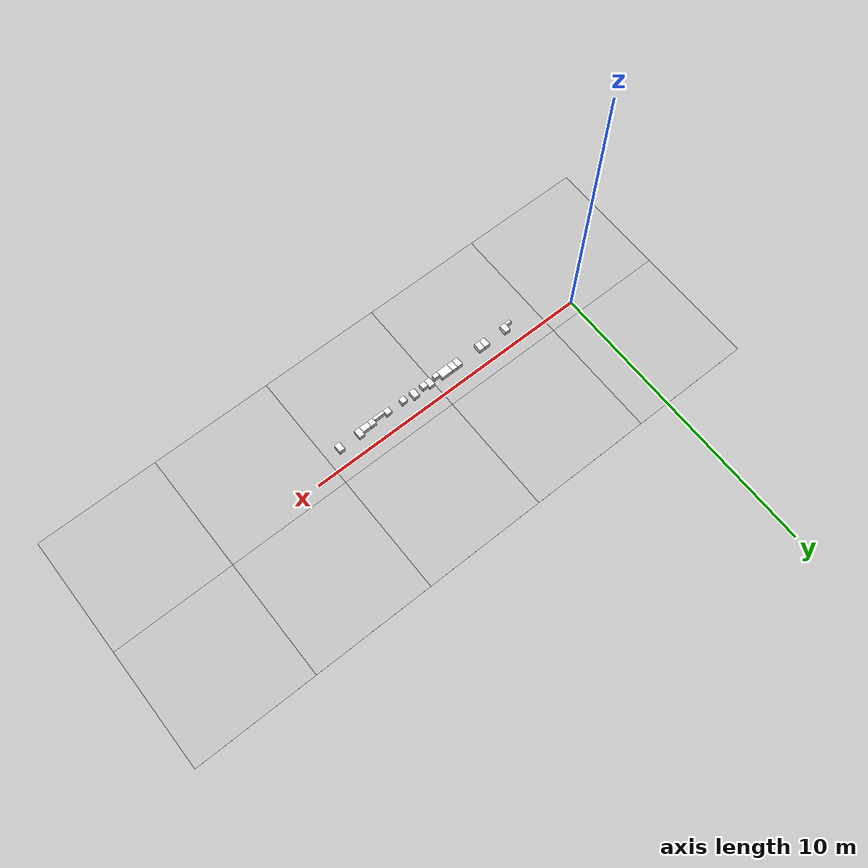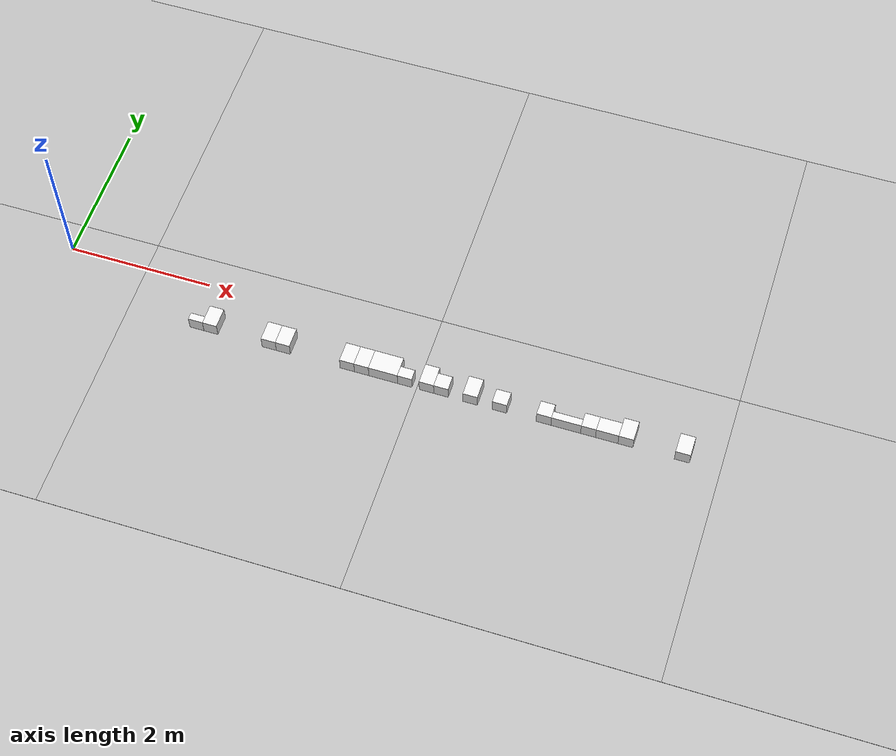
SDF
<sdf version='1.6'><world name='default'>
    <light name='sun_light' type='directional'>
      <pose frame=''>0 0 10 0 -0 0</pose>
      <diffuse>0.5 0.5 0.5 1</diffuse>
      <specular>0.1 0.1 0.1 1</specular>
      <direction>0.1 0.1 -0.9</direction>
      <attenuation>
        <range>20</range>
        <constant>0.5</constant>
        <linear>0.01</linear>
        <quadratic>0.001</quadratic>
      </attenuation>
      <cast_shadows>1</cast_shadows>
    </light>

    <model name='Tile/0-0'>
      <static>1</static>
      <link name='link'>
        <collision name='collision'>
          <geometry>
            <plane>
              <normal>0 0 1</normal>
              <size>4.096 4.096</size>
            </plane>
          </geometry>
          <surface>
            <friction>
              <ode>
                <mu>100</mu>
                <mu2>50</mu2>
              </ode>
              <torsional>
                <ode/>
              </torsional>
            </friction>
            <contact>
              <ode/>
            </contact>
            <bounce/>
          </surface>
          <max_contacts>10</max_contacts>
        </collision>
        <visual name='visual'>
          <cast_shadows>0</cast_shadows>
          <geometry>
            <plane>
              <normal>0 0 1</normal>
              <size>4.096 4.096</size>
            </plane>
          </geometry>
          <material>
            <script>
              <uri>file://materials/scripts</uri>
              <uri>file://materials/textures</uri>
              <name>Tile/aa44efc093d15b0d016b671cb8dad8b9b5925cd42bc6b331ef31decf4ba6863e</name>
            </script>
          </material>
        </visual>
        <self_collide>0</self_collide>
        <enable_wind>0</enable_wind>
        <kinematic>0</kinematic>
      </link>
      <pose frame=''>-0.952 -1.6520000000000001 0 0 -0 0</pose>
    </model>

    <model name='Tile/0-1'>
      <static>1</static>
      <link name='link'>
        <collision name='collision'>
          <geometry>
            <plane>
              <normal>0 0 1</normal>
              <size>4.096 4.096</size>
            </plane>
          </geometry>
          <surface>
            <friction>
              <ode>
                <mu>100</mu>
                <mu2>50</mu2>
              </ode>
              <torsional>
                <ode/>
              </torsional>
            </friction>
            <contact>
              <ode/>
            </contact>
            <bounce/>
          </surface>
          <max_contacts>10</max_contacts>
        </collision>
        <visual name='visual'>
          <cast_shadows>0</cast_shadows>
          <geometry>
            <plane>
              <normal>0 0 1</normal>
              <size>4.096 4.096</size>
            </plane>
          </geometry>
          <material>
            <script>
              <uri>file://materials/scripts</uri>
              <uri>file://materials/textures</uri>
              <name>Tile/6681b896b1587d54cb69aadeb5fb7247b4d6d500490292053e67105ac88ca889</name>
            </script>
          </material>
        </visual>
        <self_collide>0</self_collide>
        <enable_wind>0</enable_wind>
        <kinematic>0</kinematic>
      </link>
      <pose frame=''>-0.952 2.444 0 0 -0 0</pose>
    </model>

    <model name='Tile/1-0'>
      <static>1</static>
      <link name='link'>
        <collision name='collision'>
          <geometry>
            <plane>
              <normal>0 0 1</normal>
              <size>4.096 4.096</size>
            </plane>
          </geometry>
          <surface>
            <friction>
              <ode>
                <mu>100</mu>
                <mu2>50</mu2>
              </ode>
              <torsional>
                <ode/>
              </torsional>
            </friction>
            <contact>
              <ode/>
            </contact>
            <bounce/>
          </surface>
          <max_contacts>10</max_contacts>
        </collision>
        <visual name='visual'>
          <cast_shadows>0</cast_shadows>
          <geometry>
            <plane>
              <normal>0 0 1</normal>
              <size>4.096 4.096</size>
            </plane>
          </geometry>
          <material>
            <script>
              <uri>file://materials/scripts</uri>
              <uri>file://materials/textures</uri>
              <name>Tile/596ebdf04be01501635488e7e7f1c977e3ef667d4e428c8e61d845d4f47d8e7c</name>
            </script>
          </material>
        </visual>
        <self_collide>0</self_collide>
        <enable_wind>0</enable_wind>
        <kinematic>0</kinematic>
      </link>
      <pose frame=''>3.144 -1.6520000000000001 0 0 -0 0</pose>
    </model>

    <model name='Tile/1-1'>
      <static>1</static>
      <link name='link'>
        <collision name='collision'>
          <geometry>
            <plane>
              <normal>0 0 1</normal>
              <size>4.096 4.096</size>
            </plane>
          </geometry>
          <surface>
            <friction>
              <ode>
                <mu>100</mu>
                <mu2>50</mu2>
              </ode>
              <torsional>
                <ode/>
              </torsional>
            </friction>
            <contact>
              <ode/>
            </contact>
            <bounce/>
          </surface>
          <max_contacts>10</max_contacts>
        </collision>
        <visual name='visual'>
          <cast_shadows>0</cast_shadows>
          <geometry>
            <plane>
              <normal>0 0 1</normal>
              <size>4.096 4.096</size>
            </plane>
          </geometry>
          <material>
            <script>
              <uri>file://materials/scripts</uri>
              <uri>file://materials/textures</uri>
              <name>Tile/13957a6de1f2afce18d7f1f64dacc2f21295e26ccf498256b0e1a51002cd5706</name>
            </script>
          </material>
        </visual>
        <self_collide>0</self_collide>
        <enable_wind>0</enable_wind>
        <kinematic>0</kinematic>
      </link>
      <pose frame=''>3.144 2.444 0 0 -0 0</pose>
    </model>

    <model name='Tile/2-0'>
      <static>1</static>
      <link name='link'>
        <collision name='collision'>
          <geometry>
            <plane>
              <normal>0 0 1</normal>
              <size>4.096 4.096</size>
            </plane>
          </geometry>
          <surface>
            <friction>
              <ode>
                <mu>100</mu>
                <mu2>50</mu2>
              </ode>
              <torsional>
                <ode/>
              </torsional>
            </friction>
            <contact>
              <ode/>
            </contact>
            <bounce/>
          </surface>
          <max_contacts>10</max_contacts>
        </collision>
        <visual name='visual'>
          <cast_shadows>0</cast_shadows>
          <geometry>
            <plane>
              <normal>0 0 1</normal>
              <size>4.096 4.096</size>
            </plane>
          </geometry>
          <material>
            <script>
              <uri>file://materials/scripts</uri>
              <uri>file://materials/textures</uri>
              <name>Tile/cbddc153e49222d1d6595acd2b9f5109fae374e89477a6c6ad6e3800ec78341f</name>
            </script>
          </material>
        </visual>
        <self_collide>0</self_collide>
        <enable_wind>0</enable_wind>
        <kinematic>0</kinematic>
      </link>
      <pose frame=''>7.24 -1.6520000000000001 0 0 -0 0</pose>
    </model>

    <model name='Tile/2-1'>
      <static>1</static>
      <link name='link'>
        <collision name='collision'>
          <geometry>
            <plane>
              <normal>0 0 1</normal>
              <size>4.096 4.096</size>
            </plane>
          </geometry>
          <surface>
            <friction>
              <ode>
                <mu>100</mu>
                <mu2>50</mu2>
              </ode>
              <torsional>
                <ode/>
              </torsional>
            </friction>
            <contact>
              <ode/>
            </contact>
            <bounce/>
          </surface>
          <max_contacts>10</max_contacts>
        </collision>
        <visual name='visual'>
          <cast_shadows>0</cast_shadows>
          <geometry>
            <plane>
              <normal>0 0 1</normal>
              <size>4.096 4.096</size>
            </plane>
          </geometry>
          <material>
            <script>
              <uri>file://materials/scripts</uri>
              <uri>file://materials/textures</uri>
              <name>Tile/13957a6de1f2afce18d7f1f64dacc2f21295e26ccf498256b0e1a51002cd5706</name>
            </script>
          </material>
        </visual>
        <self_collide>0</self_collide>
        <enable_wind>0</enable_wind>
        <kinematic>0</kinematic>
      </link>
      <pose frame=''>7.24 2.444 0 0 -0 0</pose>
    </model>

    <model name='Tile/3-0'>
      <static>1</static>
      <link name='link'>
        <collision name='collision'>
          <geometry>
            <plane>
              <normal>0 0 1</normal>
              <size>4.096 4.096</size>
            </plane>
          </geometry>
          <surface>
            <friction>
              <ode>
                <mu>100</mu>
                <mu2>50</mu2>
              </ode>
              <torsional>
                <ode/>
              </torsional>
            </friction>
            <contact>
              <ode/>
            </contact>
            <bounce/>
          </surface>
          <max_contacts>10</max_contacts>
        </collision>
        <visual name='visual'>
          <cast_shadows>0</cast_shadows>
          <geometry>
            <plane>
              <normal>0 0 1</normal>
              <size>4.096 4.096</size>
            </plane>
          </geometry>
          <material>
            <script>
              <uri>file://materials/scripts</uri>
              <uri>file://materials/textures</uri>
              <name>Tile/a2e70b271843357a6fa1ef4108b4103409bc7753da6082ab6a0850a53cefc47d</name>
            </script>
          </material>
        </visual>
        <self_collide>0</self_collide>
        <enable_wind>0</enable_wind>
        <kinematic>0</kinematic>
      </link>
      <pose frame=''>11.336 -1.6520000000000001 0 0 -0 0</pose>
    </model>

    <model name='Tile/3-1'>
      <static>1</static>
      <link name='link'>
        <collision name='collision'>
          <geometry>
            <plane>
              <normal>0 0 1</normal>
              <size>4.096 4.096</size>
            </plane>
          </geometry>
          <surface>
            <friction>
              <ode>
                <mu>100</mu>
                <mu2>50</mu2>
              </ode>
              <torsional>
                <ode/>
              </torsional>
            </friction>
            <contact>
              <ode/>
            </contact>
            <bounce/>
          </surface>
          <max_contacts>10</max_contacts>
        </collision>
        <visual name='visual'>
          <cast_shadows>0</cast_shadows>
          <geometry>
            <plane>
              <normal>0 0 1</normal>
              <size>4.096 4.096</size>
            </plane>
          </geometry>
          <material>
            <script>
              <uri>file://materials/scripts</uri>
              <uri>file://materials/textures</uri>
              <name>Tile/af1fe16cf0d20f022b256245d0811b9212ac0cbb5bd7f66d373aeff8a96717bb</name>
            </script>
          </material>
        </visual>
        <self_collide>0</self_collide>
        <enable_wind>0</enable_wind>
        <kinematic>0</kinematic>
      </link>
      <pose frame=''>11.336 2.444 0 0 -0 0</pose>
    </model>

    <model name='Tile/4-0'>
      <static>1</static>
      <link name='link'>
        <collision name='collision'>
          <geometry>
            <plane>
              <normal>0 0 1</normal>
              <size>4.096 4.096</size>
            </plane>
          </geometry>
          <surface>
            <friction>
              <ode>
                <mu>100</mu>
                <mu2>50</mu2>
              </ode>
              <torsional>
                <ode/>
              </torsional>
            </friction>
            <contact>
              <ode/>
            </contact>
            <bounce/>
          </surface>
          <max_contacts>10</max_contacts>
        </collision>
        <visual name='visual'>
          <cast_shadows>0</cast_shadows>
          <geometry>
            <plane>
              <normal>0 0 1</normal>
              <size>4.096 4.096</size>
            </plane>
          </geometry>
          <material>
            <script>
              <uri>file://materials/scripts</uri>
              <uri>file://materials/textures</uri>
              <name>Tile/5eab350b8220ac9944dbdfa4ac3288c7c17e24c3bf5df0dfcf6173d64dae00a1</name>
            </script>
          </material>
        </visual>
        <self_collide>0</self_collide>
        <enable_wind>0</enable_wind>
        <kinematic>0</kinematic>
      </link>
      <pose frame=''>15.431999999999999 -1.6520000000000001 0 0 -0 0</pose>
    </model>

    <model name='Tile/4-1'>
      <static>1</static>
      <link name='link'>
        <collision name='collision'>
          <geometry>
            <plane>
              <normal>0 0 1</normal>
              <size>4.096 4.096</size>
            </plane>
          </geometry>
          <surface>
            <friction>
              <ode>
                <mu>100</mu>
                <mu2>50</mu2>
              </ode>
              <torsional>
                <ode/>
              </torsional>
            </friction>
            <contact>
              <ode/>
            </contact>
            <bounce/>
          </surface>
          <max_contacts>10</max_contacts>
        </collision>
        <visual name='visual'>
          <cast_shadows>0</cast_shadows>
          <geometry>
            <plane>
              <normal>0 0 1</normal>
              <size>4.096 4.096</size>
            </plane>
          </geometry>
          <material>
            <script>
              <uri>file://materials/scripts</uri>
              <uri>file://materials/textures</uri>
              <name>Tile/5eab350b8220ac9944dbdfa4ac3288c7c17e24c3bf5df0dfcf6173d64dae00a1</name>
            </script>
          </material>
        </visual>
        <self_collide>0</self_collide>
        <enable_wind>0</enable_wind>
        <kinematic>0</kinematic>
      </link>
      <pose frame=''>15.431999999999999 2.444 0 0 -0 0</pose>
    </model>

    <model name='Obstacle/-5/0'>
      <pose frame=''>2.1 -0.6499999999999999 0.1 0 0 -0.0</pose>
      <link name='link'>
        <inertial>
          <mass>10</mass>
          <inertia>
            <ixx>0.166667</ixx>
            <ixy>0</ixy>
            <ixz>0</ixz>
            <iyy>0.166667</iyy>
            <iyz>0</iyz>
            <izz>0.166667</izz>
          </inertia>
        </inertial>
        <collision name='collision'>
          <geometry>
            <box>
              <size>0.2 0.1 0.2</size>
            </box>
          </geometry>
          <max_contacts>10</max_contacts>
          <surface>
            <contact>
              <ode/>
            </contact>
            <bounce/>
            <friction>
              <torsional>
                <ode/>
              </torsional>
              <ode/>
            </friction>
          </surface>
        </collision>
        <visual name='visual'>
          <geometry>
            <box>
              <size>0.2 0.1 0.2</size>
            </box>
          </geometry>
          <material>
            <script>
              <name>Gazebo/White</name>
              <uri>file://media/materials/scripts/gazebo.material</uri>
            </script>
          </material>
        </visual>
        <self_collide>0</self_collide>
        <enable_wind>0</enable_wind>
        <kinematic>0</kinematic>
      </link>
    </model>

    <model name='Obstacle/-9/0'>
      <pose frame=''>2.3000000000000003 -0.5599999999999999 0.1 0 0 -0.0</pose>
      <link name='link'>
        <inertial>
          <mass>10</mass>
          <inertia>
            <ixx>0.166667</ixx>
            <ixy>0</ixy>
            <ixz>0</ixz>
            <iyy>0.166667</iyy>
            <iyz>0</iyz>
            <izz>0.166667</izz>
          </inertia>
        </inertial>
        <collision name='collision'>
          <geometry>
            <box>
              <size>0.2 0.28 0.2</size>
            </box>
          </geometry>
          <max_contacts>10</max_contacts>
          <surface>
            <contact>
              <ode/>
            </contact>
            <bounce/>
            <friction>
              <torsional>
                <ode/>
              </torsional>
              <ode/>
            </friction>
          </surface>
        </collision>
        <visual name='visual'>
          <geometry>
            <box>
              <size>0.2 0.28 0.2</size>
            </box>
          </geometry>
          <material>
            <script>
              <name>Gazebo/White</name>
              <uri>file://media/materials/scripts/gazebo.material</uri>
            </script>
          </material>
        </visual>
        <self_collide>0</self_collide>
        <enable_wind>0</enable_wind>
        <kinematic>0</kinematic>
      </link>
    </model>

    <model name='Obstacle/-16/0'>
      <pose frame=''>3.1300000000000003 -0.5599999999999999 0.1 0 0 -0.0</pose>
      <link name='link'>
        <inertial>
          <mass>10</mass>
          <inertia>
            <ixx>0.166667</ixx>
            <ixy>0</ixy>
            <ixz>0</ixz>
            <iyy>0.166667</iyy>
            <iyz>0</iyz>
            <izz>0.166667</izz>
          </inertia>
        </inertial>
        <collision name='collision'>
          <geometry>
            <box>
              <size>0.2 0.28 0.2</size>
            </box>
          </geometry>
          <max_contacts>10</max_contacts>
          <surface>
            <contact>
              <ode/>
            </contact>
            <bounce/>
            <friction>
              <torsional>
                <ode/>
              </torsional>
              <ode/>
            </friction>
          </surface>
        </collision>
        <visual name='visual'>
          <geometry>
            <box>
              <size>0.2 0.28 0.2</size>
            </box>
          </geometry>
          <material>
            <script>
              <name>Gazebo/White</name>
              <uri>file://media/materials/scripts/gazebo.material</uri>
            </script>
          </material>
        </visual>
        <self_collide>0</self_collide>
        <enable_wind>0</enable_wind>
        <kinematic>0</kinematic>
      </link>
    </model>

    <model name='Obstacle/-20/0'>
      <pose frame=''>3.3300000000000005 -0.5599999999999999 0.1 0 0 -0.0</pose>
      <link name='link'>
        <inertial>
          <mass>10</mass>
          <inertia>
            <ixx>0.166667</ixx>
            <ixy>0</ixy>
            <ixz>0</ixz>
            <iyy>0.166667</iyy>
            <iyz>0</iyz>
            <izz>0.166667</izz>
          </inertia>
        </inertial>
        <collision name='collision'>
          <geometry>
            <box>
              <size>0.2 0.28 0.2</size>
            </box>
          </geometry>
          <max_contacts>10</max_contacts>
          <surface>
            <contact>
              <ode/>
            </contact>
            <bounce/>
            <friction>
              <torsional>
                <ode/>
              </torsional>
              <ode/>
            </friction>
          </surface>
        </collision>
        <visual name='visual'>
          <geometry>
            <box>
              <size>0.2 0.28 0.2</size>
            </box>
          </geometry>
          <material>
            <script>
              <name>Gazebo/White</name>
              <uri>file://media/materials/scripts/gazebo.material</uri>
            </script>
          </material>
        </visual>
        <self_collide>0</self_collide>
        <enable_wind>0</enable_wind>
        <kinematic>0</kinematic>
      </link>
    </model>

    <model name='Obstacle/-27/0'>
      <pose frame=''>4.23 -0.5599999999999999 0.1 0 0 -0.0</pose>
      <link name='link'>
        <inertial>
          <mass>10</mass>
          <inertia>
            <ixx>0.166667</ixx>
            <ixy>0</ixy>
            <ixz>0</ixz>
            <iyy>0.166667</iyy>
            <iyz>0</iyz>
            <izz>0.166667</izz>
          </inertia>
        </inertial>
        <collision name='collision'>
          <geometry>
            <box>
              <size>0.2 0.28 0.2</size>
            </box>
          </geometry>
          <max_contacts>10</max_contacts>
          <surface>
            <contact>
              <ode/>
            </contact>
            <bounce/>
            <friction>
              <torsional>
                <ode/>
              </torsional>
              <ode/>
            </friction>
          </surface>
        </collision>
        <visual name='visual'>
          <geometry>
            <box>
              <size>0.2 0.28 0.2</size>
            </box>
          </geometry>
          <material>
            <script>
              <name>Gazebo/White</name>
              <uri>file://media/materials/scripts/gazebo.material</uri>
            </script>
          </material>
        </visual>
        <self_collide>0</self_collide>
        <enable_wind>0</enable_wind>
        <kinematic>0</kinematic>
      </link>
    </model>

    <model name='Obstacle/-31/0'>
      <pose frame=''>4.430000000000001 -0.5599999999999999 0.1 0 0 -0.0</pose>
      <link name='link'>
        <inertial>
          <mass>10</mass>
          <inertia>
            <ixx>0.166667</ixx>
            <ixy>0</ixy>
            <ixz>0</ixz>
            <iyy>0.166667</iyy>
            <iyz>0</iyz>
            <izz>0.166667</izz>
          </inertia>
        </inertial>
        <collision name='collision'>
          <geometry>
            <box>
              <size>0.2 0.28 0.2</size>
            </box>
          </geometry>
          <max_contacts>10</max_contacts>
          <surface>
            <contact>
              <ode/>
            </contact>
            <bounce/>
            <friction>
              <torsional>
                <ode/>
              </torsional>
              <ode/>
            </friction>
          </surface>
        </collision>
        <visual name='visual'>
          <geometry>
            <box>
              <size>0.2 0.28 0.2</size>
            </box>
          </geometry>
          <material>
            <script>
              <name>Gazebo/White</name>
              <uri>file://media/materials/scripts/gazebo.material</uri>
            </script>
          </material>
        </visual>
        <self_collide>0</self_collide>
        <enable_wind>0</enable_wind>
        <kinematic>0</kinematic>
      </link>
    </model>

    <model name='Obstacle/-35/0'>
      <pose frame=''>4.730000000000001 -0.5599999999999999 0.1 0 0 -0.0</pose>
      <link name='link'>
        <inertial>
          <mass>10</mass>
          <inertia>
            <ixx>0.166667</ixx>
            <ixy>0</ixy>
            <ixz>0</ixz>
            <iyy>0.166667</iyy>
            <iyz>0</iyz>
            <izz>0.166667</izz>
          </inertia>
        </inertial>
        <collision name='collision'>
          <geometry>
            <box>
              <size>0.4 0.28 0.2</size>
            </box>
          </geometry>
          <max_contacts>10</max_contacts>
          <surface>
            <contact>
              <ode/>
            </contact>
            <bounce/>
            <friction>
              <torsional>
                <ode/>
              </torsional>
              <ode/>
            </friction>
          </surface>
        </collision>
        <visual name='visual'>
          <geometry>
            <box>
              <size>0.4 0.28 0.2</size>
            </box>
          </geometry>
          <material>
            <script>
              <name>Gazebo/White</name>
              <uri>file://media/materials/scripts/gazebo.material</uri>
            </script>
          </material>
        </visual>
        <self_collide>0</self_collide>
        <enable_wind>0</enable_wind>
        <kinematic>0</kinematic>
      </link>
    </model>

    <model name='Obstacle/-39/0'>
      <pose frame=''>5.030000000000001 -0.625 0.1 0 0 -0.0</pose>
      <link name='link'>
        <inertial>
          <mass>10</mass>
          <inertia>
            <ixx>0.166667</ixx>
            <ixy>0</ixy>
            <ixz>0</ixz>
            <iyy>0.166667</iyy>
            <iyz>0</iyz>
            <izz>0.166667</izz>
          </inertia>
        </inertial>
        <collision name='collision'>
          <geometry>
            <box>
              <size>0.2 0.15 0.2</size>
            </box>
          </geometry>
          <max_contacts>10</max_contacts>
          <surface>
            <contact>
              <ode/>
            </contact>
            <bounce/>
            <friction>
              <torsional>
                <ode/>
              </torsional>
              <ode/>
            </friction>
          </surface>
        </collision>
        <visual name='visual'>
          <geometry>
            <box>
              <size>0.2 0.15 0.2</size>
            </box>
          </geometry>
          <material>
            <script>
              <name>Gazebo/White</name>
              <uri>file://media/materials/scripts/gazebo.material</uri>
            </script>
          </material>
        </visual>
        <self_collide>0</self_collide>
        <enable_wind>0</enable_wind>
        <kinematic>0</kinematic>
      </link>
    </model>

    <model name='Obstacle/-46/0'>
      <pose frame=''>5.330000000000001 -0.5599999999999999 0.1 0 0 -0.0</pose>
      <link name='link'>
        <inertial>
          <mass>10</mass>
          <inertia>
            <ixx>0.166667</ixx>
            <ixy>0</ixy>
            <ixz>0</ixz>
            <iyy>0.166667</iyy>
            <iyz>0</iyz>
            <izz>0.166667</izz>
          </inertia>
        </inertial>
        <collision name='collision'>
          <geometry>
            <box>
              <size>0.2 0.28 0.2</size>
            </box>
          </geometry>
          <max_contacts>10</max_contacts>
          <surface>
            <contact>
              <ode/>
            </contact>
            <bounce/>
            <friction>
              <torsional>
                <ode/>
              </torsional>
              <ode/>
            </friction>
          </surface>
        </collision>
        <visual name='visual'>
          <geometry>
            <box>
              <size>0.2 0.28 0.2</size>
            </box>
          </geometry>
          <material>
            <script>
              <name>Gazebo/White</name>
              <uri>file://media/materials/scripts/gazebo.material</uri>
            </script>
          </material>
        </visual>
        <self_collide>0</self_collide>
        <enable_wind>0</enable_wind>
        <kinematic>0</kinematic>
      </link>
    </model>

    <model name='Obstacle/-50/0'>
      <pose frame=''>5.530000000000001 -0.6 0.1 0 0 -0.0</pose>
      <link name='link'>
        <inertial>
          <mass>10</mass>
          <inertia>
            <ixx>0.166667</ixx>
            <ixy>0</ixy>
            <ixz>0</ixz>
            <iyy>0.166667</iyy>
            <iyz>0</iyz>
            <izz>0.166667</izz>
          </inertia>
        </inertial>
        <collision name='collision'>
          <geometry>
            <box>
              <size>0.2 0.2 0.2</size>
            </box>
          </geometry>
          <max_contacts>10</max_contacts>
          <surface>
            <contact>
              <ode/>
            </contact>
            <bounce/>
            <friction>
              <torsional>
                <ode/>
              </torsional>
              <ode/>
            </friction>
          </surface>
        </collision>
        <visual name='visual'>
          <geometry>
            <box>
              <size>0.2 0.2 0.2</size>
            </box>
          </geometry>
          <material>
            <script>
              <name>Gazebo/White</name>
              <uri>file://media/materials/scripts/gazebo.material</uri>
            </script>
          </material>
        </visual>
        <self_collide>0</self_collide>
        <enable_wind>0</enable_wind>
        <kinematic>0</kinematic>
      </link>
    </model>

    <model name='Obstacle/-57/0'>
      <pose frame=''>5.9300000000000015 -0.5599999999999999 0.1 0 0 -0.0</pose>
      <link name='link'>
        <inertial>
          <mass>10</mass>
          <inertia>
            <ixx>0.166667</ixx>
            <ixy>0</ixy>
            <ixz>0</ixz>
            <iyy>0.166667</iyy>
            <iyz>0</iyz>
            <izz>0.166667</izz>
          </inertia>
        </inertial>
        <collision name='collision'>
          <geometry>
            <box>
              <size>0.2 0.28 0.2</size>
            </box>
          </geometry>
          <max_contacts>10</max_contacts>
          <surface>
            <contact>
              <ode/>
            </contact>
            <bounce/>
            <friction>
              <torsional>
                <ode/>
              </torsional>
              <ode/>
            </friction>
          </surface>
        </collision>
        <visual name='visual'>
          <geometry>
            <box>
              <size>0.2 0.28 0.2</size>
            </box>
          </geometry>
          <material>
            <script>
              <name>Gazebo/White</name>
              <uri>file://media/materials/scripts/gazebo.material</uri>
            </script>
          </material>
        </visual>
        <self_collide>0</self_collide>
        <enable_wind>0</enable_wind>
        <kinematic>0</kinematic>
      </link>
    </model>

    <model name='Obstacle/-64/0'>
      <pose frame=''>6.330000000000002 -0.6 0.1 0 0 -0.0</pose>
      <link name='link'>
        <inertial>
          <mass>10</mass>
          <inertia>
            <ixx>0.166667</ixx>
            <ixy>0</ixy>
            <ixz>0</ixz>
            <iyy>0.166667</iyy>
            <iyz>0</iyz>
            <izz>0.166667</izz>
          </inertia>
        </inertial>
        <collision name='collision'>
          <geometry>
            <box>
              <size>0.2 0.2 0.2</size>
            </box>
          </geometry>
          <max_contacts>10</max_contacts>
          <surface>
            <contact>
              <ode/>
            </contact>
            <bounce/>
            <friction>
              <torsional>
                <ode/>
              </torsional>
              <ode/>
            </friction>
          </surface>
        </collision>
        <visual name='visual'>
          <geometry>
            <box>
              <size>0.2 0.2 0.2</size>
            </box>
          </geometry>
          <material>
            <script>
              <name>Gazebo/White</name>
              <uri>file://media/materials/scripts/gazebo.material</uri>
            </script>
          </material>
        </visual>
        <self_collide>0</self_collide>
        <enable_wind>0</enable_wind>
        <kinematic>0</kinematic>
      </link>
    </model>

    <model name='Obstacle/-71/0'>
      <pose frame=''>6.930000000000002 -0.6 0.1 0 0 -0.0</pose>
      <link name='link'>
        <inertial>
          <mass>10</mass>
          <inertia>
            <ixx>0.166667</ixx>
            <ixy>0</ixy>
            <ixz>0</ixz>
            <iyy>0.166667</iyy>
            <iyz>0</iyz>
            <izz>0.166667</izz>
          </inertia>
        </inertial>
        <collision name='collision'>
          <geometry>
            <box>
              <size>0.2 0.2 0.2</size>
            </box>
          </geometry>
          <max_contacts>10</max_contacts>
          <surface>
            <contact>
              <ode/>
            </contact>
            <bounce/>
            <friction>
              <torsional>
                <ode/>
              </torsional>
              <ode/>
            </friction>
          </surface>
        </collision>
        <visual name='visual'>
          <geometry>
            <box>
              <size>0.2 0.2 0.2</size>
            </box>
          </geometry>
          <material>
            <script>
              <name>Gazebo/White</name>
              <uri>file://media/materials/scripts/gazebo.material</uri>
            </script>
          </material>
        </visual>
        <self_collide>0</self_collide>
        <enable_wind>0</enable_wind>
        <kinematic>0</kinematic>
      </link>
    </model>

    <model name='Obstacle/-75/0'>
      <pose frame=''>7.230000000000003 -0.6499999999999999 0.1 0 0 -0.0</pose>
      <link name='link'>
        <inertial>
          <mass>10</mass>
          <inertia>
            <ixx>0.166667</ixx>
            <ixy>0</ixy>
            <ixz>0</ixz>
            <iyy>0.166667</iyy>
            <iyz>0</iyz>
            <izz>0.166667</izz>
          </inertia>
        </inertial>
        <collision name='collision'>
          <geometry>
            <box>
              <size>0.4 0.1 0.2</size>
            </box>
          </geometry>
          <max_contacts>10</max_contacts>
          <surface>
            <contact>
              <ode/>
            </contact>
            <bounce/>
            <friction>
              <torsional>
                <ode/>
              </torsional>
              <ode/>
            </friction>
          </surface>
        </collision>
        <visual name='visual'>
          <geometry>
            <box>
              <size>0.4 0.1 0.2</size>
            </box>
          </geometry>
          <material>
            <script>
              <name>Gazebo/White</name>
              <uri>file://media/materials/scripts/gazebo.material</uri>
            </script>
          </material>
        </visual>
        <self_collide>0</self_collide>
        <enable_wind>0</enable_wind>
        <kinematic>0</kinematic>
      </link>
    </model>

    <model name='Obstacle/-79/0'>
      <pose frame=''>7.530000000000003 -0.6 0.1 0 0 -0.0</pose>
      <link name='link'>
        <inertial>
          <mass>10</mass>
          <inertia>
            <ixx>0.166667</ixx>
            <ixy>0</ixy>
            <ixz>0</ixz>
            <iyy>0.166667</iyy>
            <iyz>0</iyz>
            <izz>0.166667</izz>
          </inertia>
        </inertial>
        <collision name='collision'>
          <geometry>
            <box>
              <size>0.2 0.2 0.2</size>
            </box>
          </geometry>
          <max_contacts>10</max_contacts>
          <surface>
            <contact>
              <ode/>
            </contact>
            <bounce/>
            <friction>
              <torsional>
                <ode/>
              </torsional>
              <ode/>
            </friction>
          </surface>
        </collision>
        <visual name='visual'>
          <geometry>
            <box>
              <size>0.2 0.2 0.2</size>
            </box>
          </geometry>
          <material>
            <script>
              <name>Gazebo/White</name>
              <uri>file://media/materials/scripts/gazebo.material</uri>
            </script>
          </material>
        </visual>
        <self_collide>0</self_collide>
        <enable_wind>0</enable_wind>
        <kinematic>0</kinematic>
      </link>
    </model>

    <model name='Obstacle/-83/0'>
      <pose frame=''>7.780000000000004 -0.6 0.1 0 0 -0.0</pose>
      <link name='link'>
        <inertial>
          <mass>10</mass>
          <inertia>
            <ixx>0.166667</ixx>
            <ixy>0</ixy>
            <ixz>0</ixz>
            <iyy>0.166667</iyy>
            <iyz>0</iyz>
            <izz>0.166667</izz>
          </inertia>
        </inertial>
        <collision name='collision'>
          <geometry>
            <box>
              <size>0.3 0.2 0.2</size>
            </box>
          </geometry>
          <max_contacts>10</max_contacts>
          <surface>
            <contact>
              <ode/>
            </contact>
            <bounce/>
            <friction>
              <torsional>
                <ode/>
              </torsional>
              <ode/>
            </friction>
          </surface>
        </collision>
        <visual name='visual'>
          <geometry>
            <box>
              <size>0.3 0.2 0.2</size>
            </box>
          </geometry>
          <material>
            <script>
              <name>Gazebo/White</name>
              <uri>file://media/materials/scripts/gazebo.material</uri>
            </script>
          </material>
        </visual>
        <self_collide>0</self_collide>
        <enable_wind>0</enable_wind>
        <kinematic>0</kinematic>
      </link>
    </model>

    <model name='Obstacle/-87/0'>
      <pose frame=''>8.030000000000003 -0.5599999999999999 0.1 0 0 -0.0</pose>
      <link name='link'>
        <inertial>
          <mass>10</mass>
          <inertia>
            <ixx>0.166667</ixx>
            <ixy>0</ixy>
            <ixz>0</ixz>
            <iyy>0.166667</iyy>
            <iyz>0</iyz>
            <izz>0.166667</izz>
          </inertia>
        </inertial>
        <collision name='collision'>
          <geometry>
            <box>
              <size>0.2 0.28 0.2</size>
            </box>
          </geometry>
          <max_contacts>10</max_contacts>
          <surface>
            <contact>
              <ode/>
            </contact>
            <bounce/>
            <friction>
              <torsional>
                <ode/>
              </torsional>
              <ode/>
            </friction>
          </surface>
        </collision>
        <visual name='visual'>
          <geometry>
            <box>
              <size>0.2 0.28 0.2</size>
            </box>
          </geometry>
          <material>
            <script>
              <name>Gazebo/White</name>
              <uri>file://media/materials/scripts/gazebo.material</uri>
            </script>
          </material>
        </visual>
        <self_collide>0</self_collide>
        <enable_wind>0</enable_wind>
        <kinematic>0</kinematic>
      </link>
    </model>

    <model name='Obstacle/-94/0'>
      <pose frame=''>8.780000000000003 -0.5599999999999999 0.1 0 0 -0.0</pose>
      <link name='link'>
        <inertial>
          <mass>10</mass>
          <inertia>
            <ixx>0.166667</ixx>
            <ixy>0</ixy>
            <ixz>0</ixz>
            <iyy>0.166667</iyy>
            <iyz>0</iyz>
            <izz>0.166667</izz>
          </inertia>
        </inertial>
        <collision name='collision'>
          <geometry>
            <box>
              <size>0.2 0.28 0.2</size>
            </box>
          </geometry>
          <max_contacts>10</max_contacts>
          <surface>
            <contact>
              <ode/>
            </contact>
            <bounce/>
            <friction>
              <torsional>
                <ode/>
              </torsional>
              <ode/>
            </friction>
          </surface>
        </collision>
        <visual name='visual'>
          <geometry>
            <box>
              <size>0.2 0.28 0.2</size>
            </box>
          </geometry>
          <material>
            <script>
              <name>Gazebo/White</name>
              <uri>file://media/materials/scripts/gazebo.material</uri>
            </script>
          </material>
        </visual>
        <self_collide>0</self_collide>
        <enable_wind>0</enable_wind>
        <kinematic>0</kinematic>
      </link>
    </model>
    </world></sdf>
